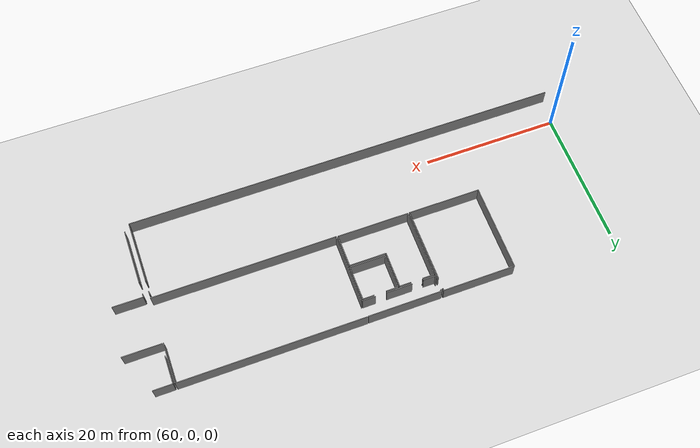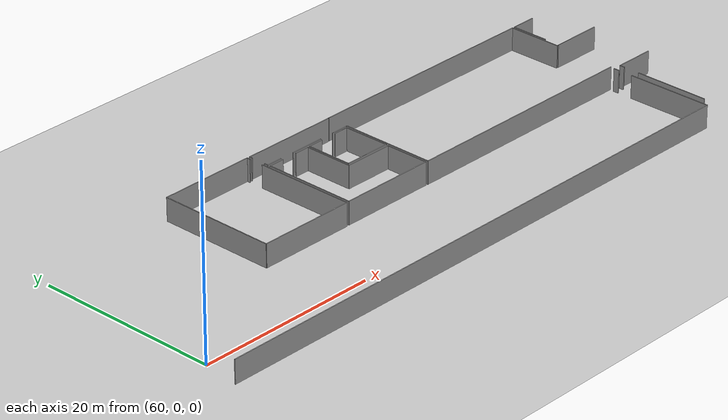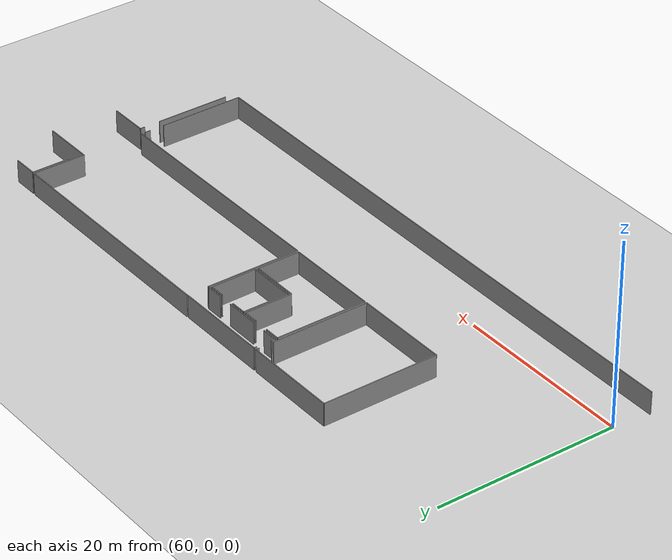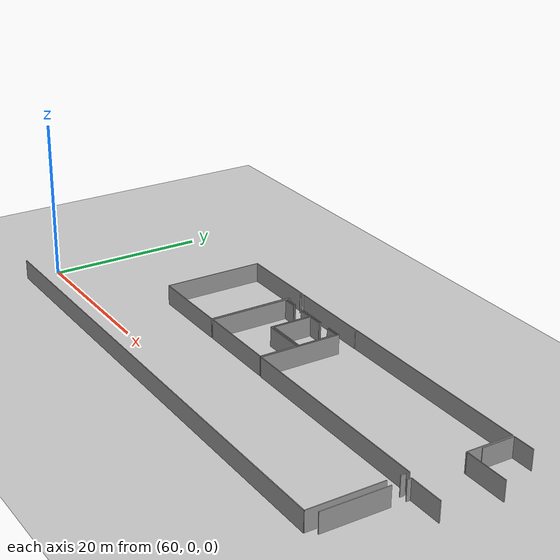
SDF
<sdf version="1.6">
 <world name="default">
  <model name="ground_plane">
   <static>1</static>
   <link name="link">
    <collision name="collision">
     <geometry><plane><normal>0 0 1</normal><size>100 100</size></plane></geometry>
     <surface><friction><ode><mu>100</mu><mu2>50</mu2></ode></friction></surface>
    </collision>
    <visual name="visual">
     <cast_shadows>0</cast_shadows>
     <geometry><plane><normal>0 0 1</normal><size>100 100</size></plane></geometry>
     <material>
      <script><uri>file://media/materials/scripts/gazebo.material</uri><name>Gazebo/Grey</name></script>
     </material>
    </visual>
   </link>
  </model>
  <model name="50037764_PLAN1">
   <static>1</static>
   <link name="Wall_425">
    <collision name="Wall_425_Collision">
     <geometry><box><size>64.4687071025 0.1 2.5</size></box></geometry>
     <pose>32.2343535513 0 1.25 0 0 0</pose>
    </collision>
    <visual name="Wall_425_Visual">
     <pose>32.2343535513 0 1.25 0 0 0</pose>
     <geometry><box><size>64.4687071025 0.1 2.5</size></box></geometry>
     <material>
      <script><uri>file://media/materials/scripts/gazebo.material</uri><name>Gazebo/Grey</name></script>
      <ambient>1 1 1 1</ambient>
     </material>
    </visual>
    <pose>259.030962428 -24.838197163 0 0 0 3.14159265359</pose>
   </link>
   <link name="Wall_429">
    <collision name="Wall_429_Collision">
     <geometry><box><size>0.610758045656 0.1 2.5</size></box></geometry>
     <pose>0.305379022828 0 1.25 0 0 0</pose>
    </collision>
    <visual name="Wall_429_Visual">
     <pose>0.305379022828 0 1.25 0 0 0</pose>
     <geometry><box><size>0.610758045656 0.1 2.5</size></box></geometry>
     <material>
      <script><uri>file://media/materials/scripts/gazebo.material</uri><name>Gazebo/Grey</name></script>
      <ambient>1 1 1 1</ambient>
     </material>
    </visual>
    <pose>258.992831359 -13.2695612385 0 0 0 -1.57079632679</pose>
   </link>
   <link name="Wall_430">
    <collision name="Wall_430_Collision">
     <geometry><box><size>9.34463013911 0.1 2.5</size></box></geometry>
     <pose>4.67231506955 0 1.25 0 0 0</pose>
    </collision>
    <visual name="Wall_430_Visual">
     <pose>4.67231506955 0 1.25 0 0 0</pose>
     <geometry><box><size>9.34463013911 0.1 2.5</size></box></geometry>
     <material>
      <script><uri>file://media/materials/scripts/gazebo.material</uri><name>Gazebo/Grey</name></script>
      <ambient>1 1 1 1</ambient>
     </material>
    </visual>
    <pose>258.992831359 -15.4936448218 0 0 0 -1.56671578273</pose>
   </link>
   <link name="Wall_431">
    <collision name="Wall_431_Collision">
     <geometry><box><size>8.22776958666 0.1 2.5</size></box></geometry>
     <pose>4.11388479333 0 1.25 0 0 0</pose>
    </collision>
    <visual name="Wall_431_Visual">
     <pose>4.11388479333 0 1.25 0 0 0</pose>
     <geometry><box><size>8.22776958666 0.1 2.5</size></box></geometry>
     <material>
      <script><uri>file://media/materials/scripts/gazebo.material</uri><name>Gazebo/Grey</name></script>
      <ambient>1 1 1 1</ambient>
     </material>
    </visual>
    <pose>259.890182521 -23.8256901724 0 0 0 1.57079632679</pose>
   </link>
   <link name="Wall_432">
    <collision name="Wall_432_Collision">
     <geometry><box><size>0.534877217957 0.1 2.5</size></box></geometry>
     <pose>0.267438608979 0 1.25 0 0 0</pose>
    </collision>
    <visual name="Wall_432_Visual">
     <pose>0.267438608979 0 1.25 0 0 0</pose>
     <geometry><box><size>0.534877217957 0.1 2.5</size></box></geometry>
     <material>
      <script><uri>file://media/materials/scripts/gazebo.material</uri><name>Gazebo/Grey</name></script>
      <ambient>1 1 1 1</ambient>
     </material>
    </visual>
    <pose>259.890182521 -13.8149372108 0 0 0 1.57079632679</pose>
   </link>
   <link name="Wall_433">
    <collision name="Wall_433_Collision">
     <geometry><box><size>4.38253088617 0.1 2.5</size></box></geometry>
     <pose>2.19126544308 0 1.25 0 0 0</pose>
    </collision>
    <visual name="Wall_433_Visual">
     <pose>2.19126544308 0 1.25 0 0 0</pose>
     <geometry><box><size>4.38253088617 0.1 2.5</size></box></geometry>
     <material>
      <script><uri>file://media/materials/scripts/gazebo.material</uri><name>Gazebo/Grey</name></script>
      <ambient>1 1 1 1</ambient>
     </material>
    </visual>
    <pose>259.890182521 -13.2800599929 0 0 0 0.0</pose>
   </link>
   <link name="Wall_442">
    <collision name="Wall_442_Collision">
     <geometry><box><size>5.62306167065 0.1 2.5</size></box></geometry>
     <pose>2.81153083532 0 1.25 0 0 0</pose>
    </collision>
    <visual name="Wall_442_Visual">
     <pose>2.81153083532 0 1.25 0 0 0</pose>
     <geometry><box><size>5.62306167065 0.1 2.5</size></box></geometry>
     <material>
      <script><uri>file://media/materials/scripts/gazebo.material</uri><name>Gazebo/Grey</name></script>
      <ambient>1 1 1 1</ambient>
     </material>
    </visual>
    <pose>259.170776349 -5.90096090294 0 0 0 0.0</pose>
   </link>
   <link name="Wall_461">
    <collision name="Wall_461_Collision">
     <geometry><box><size>4.09489552087 0.1 2.5</size></box></geometry>
     <pose>2.04744776044 0 1.25 0 0 0</pose>
    </collision>
    <visual name="Wall_461_Visual">
     <pose>2.04744776044 0 1.25 0 0 0</pose>
     <geometry><box><size>4.09489552087 0.1 2.5</size></box></geometry>
     <material>
      <script><uri>file://media/materials/scripts/gazebo.material</uri><name>Gazebo/Grey</name></script>
      <ambient>1 1 1 1</ambient>
     </material>
    </visual>
    <pose>259.297879913 -4.12207026285 0 0 0 1.57079632679</pose>
   </link>
   <link name="Wall_462">
    <collision name="Wall_462_Collision">
     <geometry><box><size>2.79119426509 0.1 2.5</size></box></geometry>
     <pose>1.39559713254 0 1.25 0 0 0</pose>
    </collision>
    <visual name="Wall_462_Visual">
     <pose>1.39559713254 0 1.25 0 0 0</pose>
     <geometry><box><size>2.79119426509 0.1 2.5</size></box></geometry>
     <material>
      <script><uri>file://media/materials/scripts/gazebo.material</uri><name>Gazebo/Grey</name></script>
      <ambient>1 1 1 1</ambient>
     </material>
    </visual>
    <pose>259.297879913 -0.0271747419798 0 0 0 0.0</pose>
   </link>
   <link name="Wall_470">
    <collision name="Wall_470_Collision">
     <geometry><box><size>5.93001677767 0.1 2.5</size></box></geometry>
     <pose>2.96500838884 0 1.25 0 0 0</pose>
    </collision>
    <visual name="Wall_470_Visual">
     <pose>2.96500838884 0 1.25 0 0 0</pose>
     <geometry><box><size>5.93001677767 0.1 2.5</size></box></geometry>
     <material>
      <script><uri>file://media/materials/scripts/gazebo.material</uri><name>Gazebo/Grey</name></script>
      <ambient>1 1 1 1</ambient>
     </material>
    </visual>
    <pose>259.038588642 -5.94455742539 0 0 0 1.57079632679</pose>
   </link>
   <link name="Wall_471">
    <collision name="Wall_471_Collision">
     <geometry><box><size>26.7568254614 0.1 2.5</size></box></geometry>
     <pose>13.3784127307 0 1.25 0 0 0</pose>
    </collision>
    <visual name="Wall_471_Visual">
     <pose>13.3784127307 0 1.25 0 0 0</pose>
     <geometry><box><size>26.7568254614 0.1 2.5</size></box></geometry>
     <material>
      <script><uri>file://media/materials/scripts/gazebo.material</uri><name>Gazebo/Grey</name></script>
      <ambient>1 1 1 1</ambient>
     </material>
    </visual>
    <pose>259.038588642 -0.0145406477198 0 0 0 3.14159265359</pose>
   </link>
   <link name="Wall_472">
    <collision name="Wall_472_Collision">
     <geometry><box><size>10.4373887844 0.1 2.5</size></box></geometry>
     <pose>5.21869439219 0 1.25 0 0 0</pose>
    </collision>
    <visual name="Wall_472_Visual">
     <pose>5.21869439219 0 1.25 0 0 0</pose>
     <geometry><box><size>10.4373887844 0.1 2.5</size></box></geometry>
     <material>
      <script><uri>file://media/materials/scripts/gazebo.material</uri><name>Gazebo/Grey</name></script>
      <ambient>1 1 1 1</ambient>
     </material>
    </visual>
    <pose>232.281763181 -2.38720829732 0 0 0 -1.57079632679</pose>
   </link>
   <link name="Wall_473">
    <collision name="Wall_473_Collision">
     <geometry><box><size>26.7568259838 0.1 2.5</size></box></geometry>
     <pose>13.3784129919 0 1.25 0 0 0</pose>
    </collision>
    <visual name="Wall_473_Visual">
     <pose>13.3784129919 0 1.25 0 0 0</pose>
     <geometry><box><size>26.7568259838 0.1 2.5</size></box></geometry>
     <material>
      <script><uri>file://media/materials/scripts/gazebo.material</uri><name>Gazebo/Grey</name></script>
      <ambient>1 1 1 1</ambient>
     </material>
    </visual>
    <pose>232.281763181 -12.8245970817 0 0 0 0.000197613435141</pose>
   </link>
   <link name="Wall_474">
    <collision name="Wall_474_Collision">
     <geometry><box><size>5.20895825919 0.1 2.5</size></box></geometry>
     <pose>2.60447912959 0 1.25 0 0 0</pose>
    </collision>
    <visual name="Wall_474_Visual">
     <pose>2.60447912959 0 1.25 0 0 0</pose>
     <geometry><box><size>5.20895825919 0.1 2.5</size></box></geometry>
     <material>
      <script><uri>file://media/materials/scripts/gazebo.material</uri><name>Gazebo/Grey</name></script>
      <ambient>1 1 1 1</ambient>
     </material>
    </visual>
    <pose>232.063653465 -7.71162743403 0 0 0 3.14159265359</pose>
   </link>
   <link name="Wall_475">
    <collision name="Wall_475_Collision">
     <geometry><box><size>5.05531547105 0.1 2.5</size></box></geometry>
     <pose>2.52765773552 0 1.25 0 0 0</pose>
    </collision>
    <visual name="Wall_475_Visual">
     <pose>2.52765773552 0 1.25 0 0 0</pose>
     <geometry><box><size>5.05531547105 0.1 2.5</size></box></geometry>
     <material>
      <script><uri>file://media/materials/scripts/gazebo.material</uri><name>Gazebo/Grey</name></script>
      <ambient>1 1 1 1</ambient>
     </material>
    </visual>
    <pose>226.854695206 -7.71162743403 0 0 0 1.57079632679</pose>
   </link>
   <link name="Wall_476">
    <collision name="Wall_476_Collision">
     <geometry><box><size>1.7105597641 0.1 2.5</size></box></geometry>
     <pose>0.855279882048 0 1.25 0 0 0</pose>
    </collision>
    <visual name="Wall_476_Visual">
     <pose>0.855279882048 0 1.25 0 0 0</pose>
     <geometry><box><size>1.7105597641 0.1 2.5</size></box></geometry>
     <material>
      <script><uri>file://media/materials/scripts/gazebo.material</uri><name>Gazebo/Grey</name></script>
      <ambient>1 1 1 1</ambient>
     </material>
    </visual>
    <pose>226.854695206 -2.65631196299 0 0 0 0.0</pose>
   </link>
   <link name="Wall_477">
    <collision name="Wall_477_Collision">
     <geometry><box><size>1.65692206009 0.1 2.5</size></box></geometry>
     <pose>0.828461030047 0 1.25 0 0 0</pose>
    </collision>
    <visual name="Wall_477_Visual">
     <pose>0.828461030047 0 1.25 0 0 0</pose>
     <geometry><box><size>1.65692206009 0.1 2.5</size></box></geometry>
     <material>
      <script><uri>file://media/materials/scripts/gazebo.material</uri><name>Gazebo/Grey</name></script>
      <ambient>1 1 1 1</ambient>
     </material>
    </visual>
    <pose>230.346484315 -2.65631196299 0 0 0 0.0</pose>
   </link>
   <link name="Wall_478">
    <collision name="Wall_478_Collision">
     <geometry><box><size>5.05567445783 0.1 2.5</size></box></geometry>
     <pose>2.52783722892 0 1.25 0 0 0</pose>
    </collision>
    <visual name="Wall_478_Visual">
     <pose>2.52783722892 0 1.25 0 0 0</pose>
     <geometry><box><size>5.05567445783 0.1 2.5</size></box></geometry>
     <material>
      <script><uri>file://media/materials/scripts/gazebo.material</uri><name>Gazebo/Grey</name></script>
      <ambient>1 1 1 1</ambient>
     </material>
    </visual>
    <pose>232.003406376 -2.65631196299 0 0 0 -1.55887931832</pose>
   </link>
   <link name="Wall_479">
    <collision name="Wall_479_Collision">
     <geometry><box><size>10.4845187859 0.1 2.5</size></box></geometry>
     <pose>5.24225939295 0 1.25 0 0 0</pose>
    </collision>
    <visual name="Wall_479_Visual">
     <pose>5.24225939295 0 1.25 0 0 0</pose>
     <geometry><box><size>10.4845187859 0.1 2.5</size></box></geometry>
     <material>
      <script><uri>file://media/materials/scripts/gazebo.material</uri><name>Gazebo/Grey</name></script>
      <ambient>1 1 1 1</ambient>
     </material>
    </visual>
    <pose>232.017641975 -12.7844577762 0 0 0 3.14159265359</pose>
   </link>
   <link name="Wall_480">
    <collision name="Wall_480_Collision">
     <geometry><box><size>10.0888962327 0.1 2.5</size></box></geometry>
     <pose>5.04444811633 0 1.25 0 0 0</pose>
    </collision>
    <visual name="Wall_480_Visual">
     <pose>5.04444811633 0 1.25 0 0 0</pose>
     <geometry><box><size>10.0888962327 0.1 2.5</size></box></geometry>
     <material>
      <script><uri>file://media/materials/scripts/gazebo.material</uri><name>Gazebo/Grey</name></script>
      <ambient>1 1 1 1</ambient>
     </material>
    </visual>
    <pose>221.533123189 -12.7844577762 0 0 0 1.57079632679</pose>
   </link>
   <link name="Wall_481">
    <collision name="Wall_481_Collision">
     <geometry><box><size>1.71437287102 0.1 2.5</size></box></geometry>
     <pose>0.857186435508 0 1.25 0 0 0</pose>
    </collision>
    <visual name="Wall_481_Visual">
     <pose>0.857186435508 0 1.25 0 0 0</pose>
     <geometry><box><size>1.71437287102 0.1 2.5</size></box></geometry>
     <material>
      <script><uri>file://media/materials/scripts/gazebo.material</uri><name>Gazebo/Grey</name></script>
      <ambient>1 1 1 1</ambient>
     </material>
    </visual>
    <pose>221.533123189 -2.69556154355 0 0 0 0.0</pose>
   </link>
   <link name="Wall_482">
    <collision name="Wall_482_Collision">
     <geometry><box><size>1.6724286949 0.1 2.5</size></box></geometry>
     <pose>0.83621434745 0 1.25 0 0 0</pose>
    </collision>
    <visual name="Wall_482_Visual">
     <pose>0.83621434745 0 1.25 0 0 0</pose>
     <geometry><box><size>1.6724286949 0.1 2.5</size></box></geometry>
     <material>
      <script><uri>file://media/materials/scripts/gazebo.material</uri><name>Gazebo/Grey</name></script>
      <ambient>1 1 1 1</ambient>
     </material>
    </visual>
    <pose>224.949158574 -2.69556154355 0 0 0 0.0</pose>
   </link>
   <link name="Wall_483">
    <collision name="Wall_483_Collision">
     <geometry><box><size>5.30726015557 0.1 2.5</size></box></geometry>
     <pose>2.65363007779 0 1.25 0 0 0</pose>
    </collision>
    <visual name="Wall_483_Visual">
     <pose>2.65363007779 0 1.25 0 0 0</pose>
     <geometry><box><size>5.30726015557 0.1 2.5</size></box></geometry>
     <material>
      <script><uri>file://media/materials/scripts/gazebo.material</uri><name>Gazebo/Grey</name></script>
      <ambient>1 1 1 1</ambient>
     </material>
    </visual>
    <pose>226.621587269 -2.69556154355 0 0 0 -1.57079632679</pose>
   </link>
   <link name="Wall_484">
    <collision name="Wall_484_Collision">
     <geometry><box><size>5.38029386344 0.1 2.5</size></box></geometry>
     <pose>2.69014693172 0 1.25 0 0 0</pose>
    </collision>
    <visual name="Wall_484_Visual">
     <pose>2.69014693172 0 1.25 0 0 0</pose>
     <geometry><box><size>5.38029386344 0.1 2.5</size></box></geometry>
     <material>
      <script><uri>file://media/materials/scripts/gazebo.material</uri><name>Gazebo/Grey</name></script>
      <ambient>1 1 1 1</ambient>
     </material>
    </visual>
    <pose>226.621587269 -8.00282169912 0 0 0 0.0</pose>
   </link>
   <link name="Wall_485">
    <collision name="Wall_485_Collision">
     <geometry><box><size>4.78166205181 0.1 2.5</size></box></geometry>
     <pose>2.39083102591 0 1.25 0 0 0</pose>
    </collision>
    <visual name="Wall_485_Visual">
     <pose>2.39083102591 0 1.25 0 0 0</pose>
     <geometry><box><size>4.78166205181 0.1 2.5</size></box></geometry>
     <material>
      <script><uri>file://media/materials/scripts/gazebo.material</uri><name>Gazebo/Grey</name></script>
      <ambient>1 1 1 1</ambient>
     </material>
    </visual>
    <pose>232.001881133 -8.00282169912 0 0 0 -1.56750021965</pose>
   </link>
   <link name="Wall_486">
    <collision name="Wall_486_Collision">
     <geometry><box><size>10.6533123189 0.1 2.5</size></box></geometry>
     <pose>5.32665615944 0 1.25 0 0 0</pose>
    </collision>
    <visual name="Wall_486_Visual">
     <pose>5.32665615944 0 1.25 0 0 0</pose>
     <geometry><box><size>10.6533123189 0.1 2.5</size></box></geometry>
     <material>
      <script><uri>file://media/materials/scripts/gazebo.material</uri><name>Gazebo/Grey</name></script>
      <ambient>1 1 1 1</ambient>
     </material>
    </visual>
    <pose>232.162031623 -0.0421729625299 0 0 0 3.14159265359</pose>
   </link>
   <link name="Wall_487">
    <collision name="Wall_487_Collision">
     <geometry><box><size>0.305811174945 0.1 2.5</size></box></geometry>
     <pose>0.152905587473 0 1.25 0 0 0</pose>
    </collision>
    <visual name="Wall_487_Visual">
     <pose>0.152905587473 0 1.25 0 0 0</pose>
     <geometry><box><size>0.305811174945 0.1 2.5</size></box></geometry>
     <material>
      <script><uri>file://media/materials/scripts/gazebo.material</uri><name>Gazebo/Grey</name></script>
      <ambient>1 1 1 1</ambient>
     </material>
    </visual>
    <pose>221.508719304 -0.0421729625299 0 0 0 -1.57079632679</pose>
   </link>
   <link name="Wall_488">
    <collision name="Wall_488_Collision">
     <geometry><box><size>0.439600386395 0.1 2.5</size></box></geometry>
     <pose>0.219800193197 0 1.25 0 0 0</pose>
    </collision>
    <visual name="Wall_488_Visual">
     <pose>0.219800193197 0 1.25 0 0 0</pose>
     <geometry><box><size>0.439600386395 0.1 2.5</size></box></geometry>
     <material>
      <script><uri>file://media/materials/scripts/gazebo.material</uri><name>Gazebo/Grey</name></script>
      <ambient>1 1 1 1</ambient>
     </material>
    </visual>
    <pose>221.508719304 -1.98121409324 0 0 0 -1.57079632679</pose>
   </link>
   <link name="Wall_489">
    <collision name="Wall_489_Collision">
     <geometry><box><size>1.7387767553 0.1 2.5</size></box></geometry>
     <pose>0.86938837765 0 1.25 0 0 0</pose>
    </collision>
    <visual name="Wall_489_Visual">
     <pose>0.86938837765 0 1.25 0 0 0</pose>
     <geometry><box><size>1.7387767553 0.1 2.5</size></box></geometry>
     <material>
      <script><uri>file://media/materials/scripts/gazebo.material</uri><name>Gazebo/Grey</name></script>
      <ambient>1 1 1 1</ambient>
     </material>
    </visual>
    <pose>221.508719304 -2.42081447964 0 0 0 0.0</pose>
   </link>
   <link name="Wall_490">
    <collision name="Wall_490_Collision">
     <geometry><box><size>3.75743555849 0.1 2.5</size></box></geometry>
     <pose>1.87871777925 0 1.25 0 0 0</pose>
    </collision>
    <visual name="Wall_490_Visual">
     <pose>1.87871777925 0 1.25 0 0 0</pose>
     <geometry><box><size>3.75743555849 0.1 2.5</size></box></geometry>
     <material>
      <script><uri>file://media/materials/scripts/gazebo.material</uri><name>Gazebo/Grey</name></script>
      <ambient>1 1 1 1</ambient>
     </material>
    </visual>
    <pose>224.880776857 -2.42081447964 0 0 0 0.0</pose>
   </link>
   <link name="Wall_491">
    <collision name="Wall_491_Collision">
     <geometry><box><size>1.90275594296 0.1 2.5</size></box></geometry>
     <pose>0.951377971479 0 1.25 0 0 0</pose>
    </collision>
    <visual name="Wall_491_Visual">
     <pose>0.951377971479 0 1.25 0 0 0</pose>
     <geometry><box><size>1.90275594296 0.1 2.5</size></box></geometry>
     <material>
      <script><uri>file://media/materials/scripts/gazebo.material</uri><name>Gazebo/Grey</name></script>
      <ambient>1 1 1 1</ambient>
     </material>
    </visual>
    <pose>230.259291271 -2.42081447964 0 0 0 -0.00404807408044</pose>
   </link>
   <link name="Wall_492">
    <collision name="Wall_492_Collision">
     <geometry><box><size>10.5615435457 0.1 2.5</size></box></geometry>
     <pose>5.28077177284 0 1.25 0 0 0</pose>
    </collision>
    <visual name="Wall_492_Visual">
     <pose>5.28077177284 0 1.25 0 0 0</pose>
     <geometry><box><size>10.5615435457 0.1 2.5</size></box></geometry>
     <material>
      <script><uri>file://media/materials/scripts/gazebo.material</uri><name>Gazebo/Grey</name></script>
      <ambient>1 1 1 1</ambient>
     </material>
    </visual>
    <pose>221.247394377 -12.8064466928 0 0 0 3.14159265359</pose>
   </link>
   <link name="Wall_493">
    <collision name="Wall_493_Collision">
     <geometry><box><size>12.7792719508 0.1 2.5</size></box></geometry>
     <pose>6.38963597539 0 1.25 0 0 0</pose>
    </collision>
    <visual name="Wall_493_Visual">
     <pose>6.38963597539 0 1.25 0 0 0</pose>
     <geometry><box><size>12.7792719508 0.1 2.5</size></box></geometry>
     <material>
      <script><uri>file://media/materials/scripts/gazebo.material</uri><name>Gazebo/Grey</name></script>
      <ambient>1 1 1 1</ambient>
     </material>
    </visual>
    <pose>210.685850831 -12.8064466928 0 0 0 1.57079632679</pose>
   </link>
   <link name="Wall_494">
    <collision name="Wall_494_Collision">
     <geometry><box><size>10.5170572983 0.1 2.5</size></box></geometry>
     <pose>5.25852864914 0 1.25 0 0 0</pose>
    </collision>
    <visual name="Wall_494_Visual">
     <pose>5.25852864914 0 1.25 0 0 0</pose>
     <geometry><box><size>10.5170572983 0.1 2.5</size></box></geometry>
     <material>
      <script><uri>file://media/materials/scripts/gazebo.material</uri><name>Gazebo/Grey</name></script>
      <ambient>1 1 1 1</ambient>
     </material>
    </visual>
    <pose>210.685850831 -0.0271747419798 0 0 0 0.0</pose>
   </link>
   <link name="Wall_495">
    <collision name="Wall_495_Collision">
     <geometry><box><size>0.359042147542 0.1 2.5</size></box></geometry>
     <pose>0.179521073771 0 1.25 0 0 0</pose>
    </collision>
    <visual name="Wall_495_Visual">
     <pose>0.179521073771 0 1.25 0 0 0</pose>
     <geometry><box><size>0.359042147542 0.1 2.5</size></box></geometry>
     <material>
      <script><uri>file://media/materials/scripts/gazebo.material</uri><name>Gazebo/Grey</name></script>
      <ambient>1 1 1 1</ambient>
     </material>
    </visual>
    <pose>221.20290813 -0.0271747419798 0 0 0 -1.57079632679</pose>
   </link>
   <link name="Wall_496">
    <collision name="Wall_496_Collision">
     <geometry><box><size>10.8148253415 0.1 2.5</size></box></geometry>
     <pose>5.40741267075 0 1.25 0 0 0</pose>
    </collision>
    <visual name="Wall_496_Visual">
     <pose>5.40741267075 0 1.25 0 0 0</pose>
     <geometry><box><size>10.8148253415 0.1 2.5</size></box></geometry>
     <material>
      <script><uri>file://media/materials/scripts/gazebo.material</uri><name>Gazebo/Grey</name></script>
      <ambient>1 1 1 1</ambient>
     </material>
    </visual>
    <pose>221.20290813 -1.99171284763 0 0 0 -1.56668286482</pose>
   </link>
   <pose>-135.1 20.8410341146 0 0 0 0</pose>
  </model>
 </world>
</sdf>
